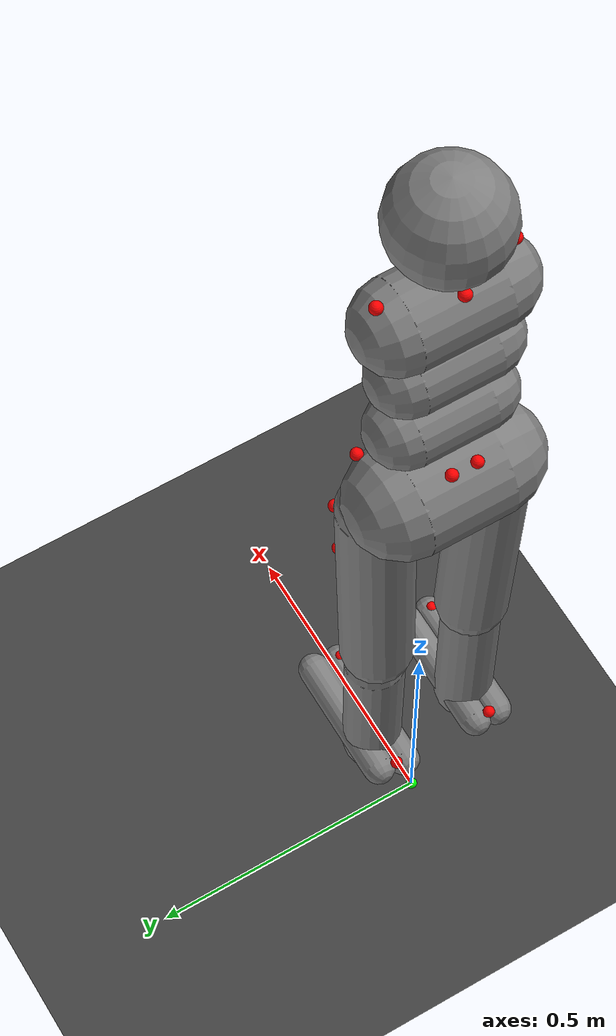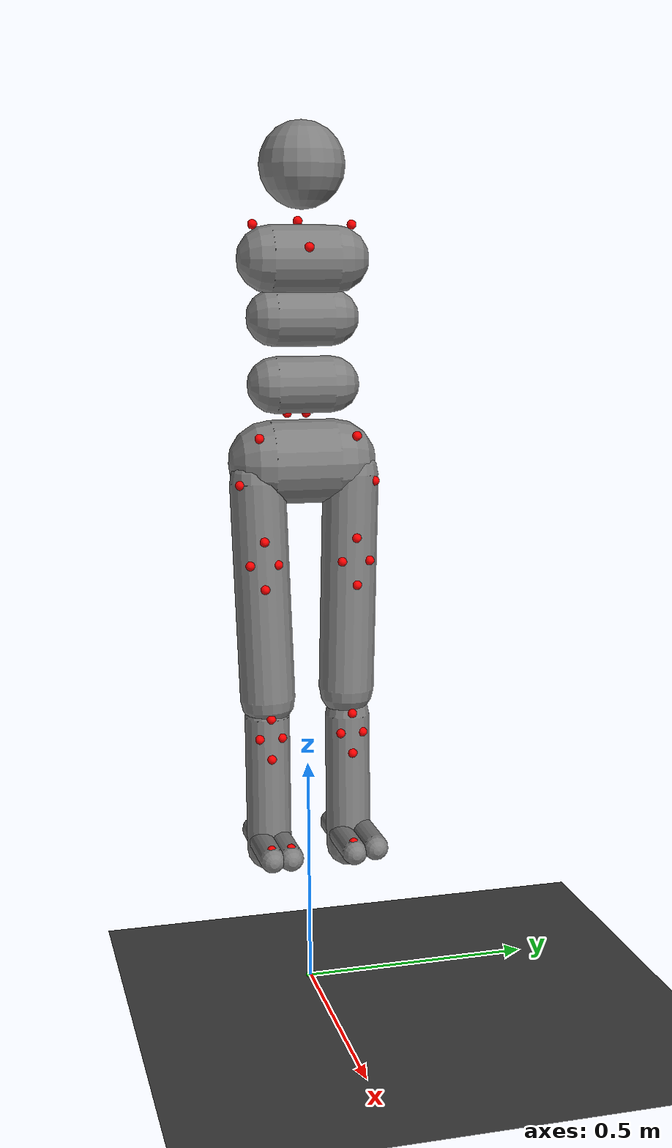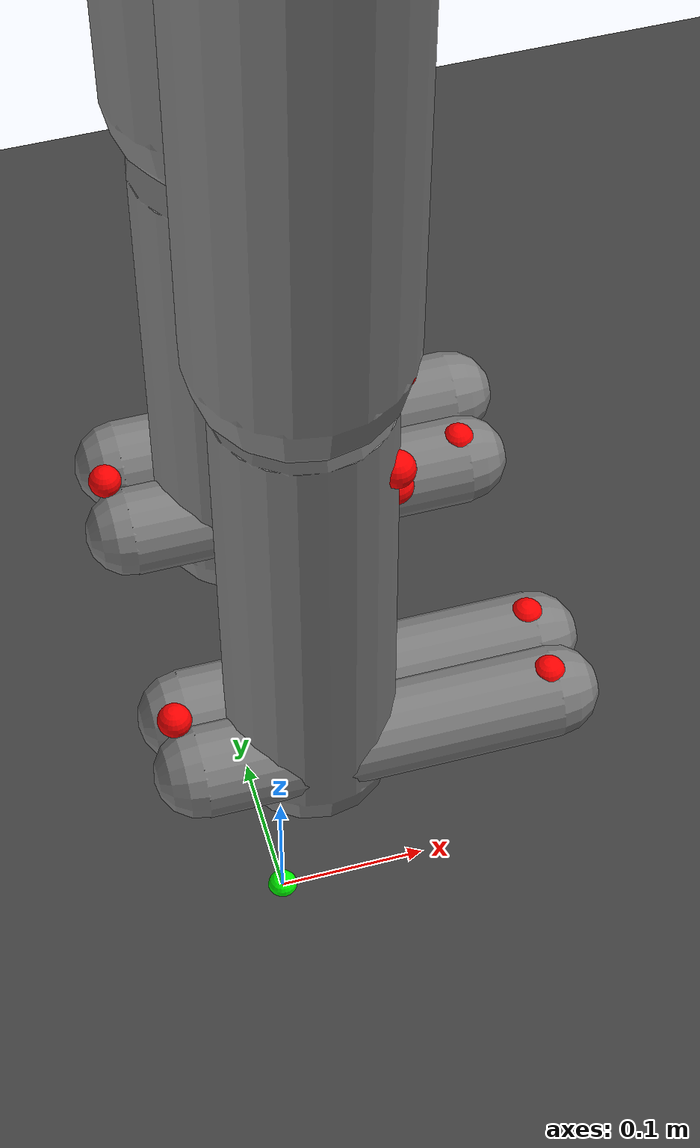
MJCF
<mujoco model="humanoid">
  <default>
    <default class="/"/>
    <default class="left_leg/"/>
    <default class="right_leg/"/>
  </default>
  <asset>
    <texture name="texplane" type="2d" builtin="checker" rgb1="0.20000000000000001 0.20000000000000001 0.20000000000000001" rgb2="0.29999999999999999 0.29999999999999999 0.29999999999999999" width="512" height="512"/>
    <material name="grid" class="/" texture="texplane" texrepeat="1 1" texuniform="true" reflectance="0.0"/>
  </asset>
  <worldbody>
    <geom name="floor" class="/" type="plane" conaffinity="1" size="100 100 0.20000000000000001" material="grid" pos="0 0 0"/>
    <body name="torso" pos="0.0000 0.0000 1.5920">
      <light name="top" class="/" mode="trackcom" pos="0 0 2"/>
      <camera name="back" class="/" mode="trackcom" pos="-3 0 1" xyaxes="0 -1 0 1 0 2"/>
      <camera name="side" class="/" mode="trackcom" pos="0 -3 1" xyaxes="1 0 0 0 1 2"/>
      <freejoint name="root"/>
      <geom name="torso" class="/" type="capsule" size="0.0700" fromto="0.0000 -0.0700 0.0000 0.0000 0.0700 0.0000"/>
      <site name="C7" class="/" type="sphere" rgba="1 0 0 1" size="0.0100" pos="-0.0450 0.0000 0.0779"/>
      <site name="CLAV" class="/" type="sphere" rgba="1 0 0 1" size="0.0100" pos="0.0658 0.0000 0.0239"/>
      <site name="LSHO" class="/" type="sphere" rgba="1 0 0 1" size="0.0100" pos="0.0000 0.1050 0.0700"/>
      <site name="RSHO" class="/" type="sphere" rgba="1 0 0 1" size="0.0100" pos="0.0000 -0.1050 0.0700"/>
      <geom name="upper_waist" class="/" type="capsule" size="0.0600" fromto="-0.0100 -0.0600 -0.1200 -0.0100 0.0600 -0.1200"/>
      <body name="head" pos="0.0000 0.0000 0.1900">
        <geom name="head" class="/" type="sphere" size="0.0900" pos="0.0000 0.0000 0.0000"/>
      </body>
      <camera name="egocentric" class="/" fovy="80.0" pos="0.089999999999999997 0 0" xyaxes="0 -1 0 0.10000000000000001 1 2"/>
      <body name="lower_waist" pos="-0.0100 0.0000 -0.2600" quat="1 0 -0.002 0">
        <geom name="lower_waist" class="/" type="capsule" size="0.0600" fromto="0.0000 -0.0600 0.0000 0.0000 0.0600 0.0000"/>
        <joint name="abdomen_z" class="/" type="hinge" pos="0 0 0.065000000000000002" axis="0 0 1" limited="true" solimplimit="0 0.98999999999999999 0.01" stiffness="20.0" range="-45 45" armature="0.01" damping="5.0"/>
        <joint name="abdomen_y" class="/" type="hinge" pos="0 0 0.065000000000000002" axis="0 1 0" limited="true" solimplimit="0 0.98999999999999999 0.01" stiffness="10.0" range="-75 30" armature="0.01" damping="5.0"/>
        <body name="pelvis" pos="0.0000 0.0000 -0.1650" quat="1 0 -0.002 0">
          <joint name="abdomen_x" class="/" type="hinge" pos="0 0 0.10000000000000001" axis="1 0 0" limited="true" solimplimit="0 0.98999999999999999 0.01" stiffness="10.0" range="-35 35" armature="0.01" damping="5.0"/>
          <geom name="butt" class="/" type="capsule" size="0.0900" fromto="-0.0200 -0.0700 0.0000 -0.0200 0.0700 0.0000"/>
          <site name="LASI" class="/" type="sphere" rgba="1 0 0 1" size="0.0100" pos="0.0489 0.1050 0.0579"/>
          <site name="LPSI" class="/" type="sphere" rgba="1 0 0 1" size="0.0100" pos="-0.0665 0.0210 0.0997"/>
          <site name="RASI" class="/" type="sphere" rgba="1 0 0 1" size="0.0100" pos="0.0489 -0.1050 0.0579"/>
          <site name="RPSI" class="/" type="sphere" rgba="1 0 0 1" size="0.0100" pos="-0.0665 -0.0210 0.0997"/>
          <site name="left_leg_site" class="/" size="9.9999999999999995e-07 9.9999999999999995e-07 9.9999999999999995e-07" pos="0 0.10000000000000001 -0.040000000000000001"/>
          <body pos="0.0000 0.1000 -0.0400" name="left_leg/">
            <body name="left_leg/thigh" pos="0.0000 0.0000 0.0000">
              <joint name="left_leg/hip_x" class="left_leg/" type="hinge" axis="1 0 0" limited="true" solimplimit="0 0.98999999999999999 0.01" stiffness="10.0" range="-25 5" armature="0.01" damping="5.0"/>
              <joint name="left_leg/hip_z" class="left_leg/" type="hinge" axis="0 0 1" limited="true" solimplimit="0 0.98999999999999999 0.01" stiffness="10.0" range="-60 35" armature="0.01" damping="5.0"/>
              <joint name="left_leg/hip_y" class="left_leg/" type="hinge" axis="0 1 0" limited="true" solimplimit="0 0.98999999999999999 0.01" stiffness="20.0" range="-110 20" armature="0.01" damping="5.0"/>
              <geom name="left_leg/thigh" class="left_leg/" type="capsule" size="0.0600" fromto="0.0000 0.0020 0.0135 0.0000 -0.0120 -0.4615"/>
              <site name="left_leg/LGT" class="left_leg/" type="sphere" rgba="1 0 0 1" size="0.0100" pos="0.0386 0.0460 0.0000"/>
              <site name="left_leg/LT1" class="left_leg/" type="sphere" rgba="1 0 0 1" size="0.0100" pos="0.0600 0.0000 -0.1190"/>
              <site name="left_leg/LT2" class="left_leg/" type="sphere" rgba="1 0 0 1" size="0.0100" pos="0.0520 0.0300 -0.1700"/>
              <site name="left_leg/LT3" class="left_leg/" type="sphere" rgba="1 0 0 1" size="0.0100" pos="0.0600 0.0000 -0.2210"/>
              <site name="left_leg/LT4" class="left_leg/" type="sphere" rgba="1 0 0 1" size="0.0100" pos="0.0520 -0.0300 -0.1700"/>
              <body name="left_leg/shin" pos="0.0000 -0.0100 -0.4030">
                <joint name="left_leg/knee" class="left_leg/" type="hinge" pos="0 0 0.02" axis="0 -1 0" limited="true" solimplimit="0 0.98999999999999999 0.01" stiffness="1.0" range="-160 2" armature="0.01" damping="0.2"/>
                <geom name="left_leg/shin" class="left_leg/" type="capsule" size="0.0490" fromto="0.0000 0.0000 -0.1180 0.0000 0.0000 -0.4180"/>
                <site name="left_leg/LKNL" class="left_leg/" type="sphere" rgba="1 0 0 1" size="0.0100" pos="0.0000 0.0490 0.0000"/>
                <site name="left_leg/LKNM" class="left_leg/" type="sphere" rgba="1 0 0 1" size="0.0100" pos="-0.0000 -0.0490 0.0000"/>
                <site name="left_leg/LS1" class="left_leg/" type="sphere" rgba="1 0 0 1" size="0.0100" pos="0.0490 0.0000 -0.1050"/>
                <site name="left_leg/LS2" class="left_leg/" type="sphere" rgba="1 0 0 1" size="0.0100" pos="0.0424 0.0245 -0.1500"/>
                <site name="left_leg/LS3" class="left_leg/" type="sphere" rgba="1 0 0 1" size="0.0100" pos="0.0490 0.0000 -0.1950"/>
                <site name="left_leg/LS4" class="left_leg/" type="sphere" rgba="1 0 0 1" size="0.0100" pos="0.0424 -0.0245 -0.1500"/>
                <body name="left_leg/foot" pos="0.0000 0.0000 -0.3900">
                  <joint name="left_leg/ankle_y" class="left_leg/" type="hinge" pos="0 0 0.080000000000000002" axis="0 1 0" limited="true" solimplimit="0 0.98999999999999999 0.01" stiffness="6.0" range="-50 50" armature="0.01" damping="0.2"/>
                  <joint name="left_leg/ankle_x" class="left_leg/" type="hinge" pos="0 0 0.040000000000000001" axis="1 0 0.5" limited="true" solimplimit="0 0.98999999999999999 0.01" stiffness="3.0" range="-50 50" armature="0.01" damping="0.2"/>
                  <geom name="left_leg/right_foot" class="left_leg/" type="capsule" size="0.0270" fromto="-0.0660 0.0260 0.0080 0.1440 0.0260 0.0080"/>
                  <geom name="left_leg/left_foot" class="left_leg/" type="capsule" size="0.0270" fromto="-0.0700 -0.0200 0.0000 0.1400 -0.0200 0.0000"/>
                  <site name="left_leg/LANL" class="left_leg/" type="sphere" rgba="1 0 0 1" size="0.0100" pos="0.0000 0.0354 0.0421"/>
                  <site name="left_leg/LANM" class="left_leg/" type="sphere" rgba="1 0 0 1" size="0.0100" pos="0.0000 -0.0354 0.0421"/>
                  <site name="left_leg/LHEE" class="left_leg/" type="sphere" rgba="1 0 0 1" size="0.0100" pos="-0.0788 0.0000 0.0270"/>
                  <site name="left_leg/LM1" class="left_leg/" type="sphere" rgba="1 0 0 1" size="0.0100" pos="0.1365 -0.0212 0.0212"/>
                  <site name="left_leg/LM5" class="left_leg/" type="sphere" rgba="1 0 0 1" size="0.0100" pos="0.1365 0.0212 0.0212"/>
                  <body name="left_leg/ffp00" pos="-0.0700 -0.0470 -0.0270"/>
                  <body name="left_leg/ffp01" pos="-0.0700 -0.0254 -0.0270"/>
                  <body name="left_leg/ffp02" pos="-0.0700 -0.0038 -0.0270"/>
                  <body name="left_leg/ffp03" pos="-0.0700 0.0178 -0.0270"/>
                  <body name="left_leg/ffp04" pos="-0.0700 0.0394 -0.0270"/>
                  <body name="left_leg/ffp10" pos="-0.0490 -0.0470 -0.0270"/>
                  <body name="left_leg/ffp11" pos="-0.0490 -0.0254 -0.0270"/>
                  <body name="left_leg/ffp12" pos="-0.0490 -0.0038 -0.0270"/>
                  <body name="left_leg/ffp13" pos="-0.0490 0.0178 -0.0270"/>
                  <body name="left_leg/ffp14" pos="-0.0490 0.0394 -0.0270"/>
                  <body name="left_leg/ffp20" pos="-0.0280 -0.0470 -0.0270"/>
                  <body name="left_leg/ffp21" pos="-0.0280 -0.0254 -0.0270"/>
                  <body name="left_leg/ffp22" pos="-0.0280 -0.0038 -0.0270"/>
                  <body name="left_leg/ffp23" pos="-0.0280 0.0178 -0.0270"/>
                  <body name="left_leg/ffp24" pos="-0.0280 0.0394 -0.0270"/>
                  <body name="left_leg/ffp30" pos="-0.0070 -0.0470 -0.0270"/>
                  <body name="left_leg/ffp31" pos="-0.0070 -0.0254 -0.0270"/>
                  <body name="left_leg/ffp32" pos="-0.0070 -0.0038 -0.0270"/>
                  <body name="left_leg/ffp33" pos="-0.0070 0.0178 -0.0270"/>
                  <body name="left_leg/ffp34" pos="-0.0070 0.0394 -0.0270"/>
                  <body name="left_leg/ffp40" pos="0.0140 -0.0470 -0.0270"/>
                  <body name="left_leg/ffp41" pos="0.0140 -0.0254 -0.0270"/>
                  <body name="left_leg/ffp42" pos="0.0140 -0.0038 -0.0270"/>
                  <body name="left_leg/ffp43" pos="0.0140 0.0178 -0.0270"/>
                  <body name="left_leg/ffp44" pos="0.0140 0.0394 -0.0270"/>
                  <body name="left_leg/ffp50" pos="0.0350 -0.0470 -0.0270"/>
                  <body name="left_leg/ffp51" pos="0.0350 -0.0254 -0.0270"/>
                  <body name="left_leg/ffp52" pos="0.0350 -0.0038 -0.0270"/>
                  <body name="left_leg/ffp53" pos="0.0350 0.0178 -0.0270"/>
                  <body name="left_leg/ffp54" pos="0.0350 0.0394 -0.0270"/>
                  <body name="left_leg/ffp60" pos="0.0560 -0.0470 -0.0270"/>
                  <body name="left_leg/ffp61" pos="0.0560 -0.0254 -0.0270"/>
                  <body name="left_leg/ffp62" pos="0.0560 -0.0038 -0.0270"/>
                  <body name="left_leg/ffp63" pos="0.0560 0.0178 -0.0270"/>
                  <body name="left_leg/ffp64" pos="0.0560 0.0394 -0.0270"/>
                  <body name="left_leg/ffp70" pos="0.0770 -0.0470 -0.0270"/>
                  <body name="left_leg/ffp71" pos="0.0770 -0.0254 -0.0270"/>
                  <body name="left_leg/ffp72" pos="0.0770 -0.0038 -0.0270"/>
                  <body name="left_leg/ffp73" pos="0.0770 0.0178 -0.0270"/>
                  <body name="left_leg/ffp74" pos="0.0770 0.0394 -0.0270"/>
                  <body name="left_leg/ffp80" pos="0.0980 -0.0470 -0.0270"/>
                  <body name="left_leg/ffp81" pos="0.0980 -0.0254 -0.0270"/>
                  <body name="left_leg/ffp82" pos="0.0980 -0.0038 -0.0270"/>
                  <body name="left_leg/ffp83" pos="0.0980 0.0178 -0.0270"/>
                  <body name="left_leg/ffp84" pos="0.0980 0.0394 -0.0270"/>
                  <body name="left_leg/ffp90" pos="0.1190 -0.0470 -0.0270"/>
                  <body name="left_leg/ffp91" pos="0.1190 -0.0254 -0.0270"/>
                  <body name="left_leg/ffp92" pos="0.1190 -0.0038 -0.0270"/>
                  <body name="left_leg/ffp93" pos="0.1190 0.0178 -0.0270"/>
                  <body name="left_leg/ffp94" pos="0.1190 0.0394 -0.0270"/>
                </body>
              </body>
            </body>
          </body>
          <site name="right_leg_site" class="/" size="9.9999999999999995e-07 9.9999999999999995e-07 9.9999999999999995e-07" pos="0 -0.10000000000000001 -0.040000000000000001"/>
          <body pos="0.0000 -0.1000 -0.0400" name="right_leg/">
            <body name="right_leg/thigh" pos="0.0000 0.0000 0.0000">
              <joint name="right_leg/hip_x" class="right_leg/" type="hinge" axis="1 0 0" limited="true" solimplimit="0 0.98999999999999999 0.01" stiffness="10.0" range="-25 5" armature="0.01" damping="5.0"/>
              <joint name="right_leg/hip_z" class="right_leg/" type="hinge" axis="0 0 1" limited="true" solimplimit="0 0.98999999999999999 0.01" stiffness="10.0" range="-60 35" armature="0.01" damping="5.0"/>
              <joint name="right_leg/hip_y" class="right_leg/" type="hinge" axis="0 1 0" limited="true" solimplimit="0 0.98999999999999999 0.01" stiffness="20.0" range="-110 20" armature="0.01" damping="5.0"/>
              <geom name="right_leg/thigh" class="right_leg/" type="capsule" size="0.0600" fromto="0.0000 -0.0020 0.0015 0.0000 0.0120 -0.4735"/>
              <site name="right_leg/RGT" class="right_leg/" type="sphere" rgba="1 0 0 1" size="0.0100" pos="0.0386 -0.0460 0.0000"/>
              <site name="right_leg/RT1" class="right_leg/" type="sphere" rgba="1 0 0 1" size="0.0100" pos="0.0600 0.0000 -0.1190"/>
              <site name="right_leg/RT2" class="right_leg/" type="sphere" rgba="1 0 0 1" size="0.0100" pos="0.0520 0.0300 -0.1700"/>
              <site name="right_leg/RT3" class="right_leg/" type="sphere" rgba="1 0 0 1" size="0.0100" pos="0.0600 0.0000 -0.2210"/>
              <site name="right_leg/RT4" class="right_leg/" type="sphere" rgba="1 0 0 1" size="0.0100" pos="0.0520 -0.0300 -0.1700"/>
              <body name="right_leg/shin" pos="0.0000 0.0100 -0.4030">
                <joint name="right_leg/knee" class="right_leg/" type="hinge" pos="0 0 0.02" axis="0 -1 0" limited="true" solimplimit="0 0.98999999999999999 0.01" stiffness="1.0" range="-160 2" armature="0.01" damping="0.2"/>
                <geom name="right_leg/shin" class="right_leg/" type="capsule" size="0.0490" fromto="0.0000 0.0000 -0.1100 0.0000 0.0000 -0.4100"/>
                <site name="right_leg/RKNL" class="right_leg/" type="sphere" rgba="1 0 0 1" size="0.0100" pos="-0.0000 -0.0490 0.0000"/>
                <site name="right_leg/RKNM" class="right_leg/" type="sphere" rgba="1 0 0 1" size="0.0100" pos="0.0000 0.0490 0.0000"/>
                <site name="right_leg/RS1" class="right_leg/" type="sphere" rgba="1 0 0 1" size="0.0100" pos="0.0490 0.0000 -0.1050"/>
                <site name="right_leg/RS2" class="right_leg/" type="sphere" rgba="1 0 0 1" size="0.0100" pos="0.0424 0.0245 -0.1500"/>
                <site name="right_leg/RS3" class="right_leg/" type="sphere" rgba="1 0 0 1" size="0.0100" pos="0.0490 0.0000 -0.1950"/>
                <site name="right_leg/RS4" class="right_leg/" type="sphere" rgba="1 0 0 1" size="0.0100" pos="0.0424 -0.0245 -0.1500"/>
                <body name="right_leg/foot" pos="0.0000 0.0000 -0.3900">
                  <joint name="right_leg/ankle_y" class="right_leg/" type="hinge" pos="0 0 0.080000000000000002" axis="0 1 0" limited="true" solimplimit="0 0.98999999999999999 0.01" stiffness="6.0" range="-50 50" armature="0.01" damping="0.2"/>
                  <joint name="right_leg/ankle_x" class="right_leg/" type="hinge" pos="0 0 0.040000000000000001" axis="1 0 0.5" limited="true" solimplimit="0 0.98999999999999999 0.01" stiffness="3.0" range="-50 50" armature="0.01" damping="0.2"/>
                  <geom name="right_leg/right_foot" class="right_leg/" type="capsule" size="0.0270" fromto="-0.0700 -0.0200 0.0000 0.1400 -0.0200 0.0000"/>
                  <geom name="right_leg/left_foot" class="right_leg/" type="capsule" size="0.0270" fromto="-0.0700 0.0200 0.0000 0.1400 0.0200 0.0000"/>
                  <site name="right_leg/RANL" class="right_leg/" type="sphere" rgba="1 0 0 1" size="0.0100" pos="0.0000 -0.0354 0.0421"/>
                  <site name="right_leg/RANM" class="right_leg/" type="sphere" rgba="1 0 0 1" size="0.0100" pos="0.0000 0.0354 0.0421"/>
                  <site name="right_leg/RHEE" class="right_leg/" type="sphere" rgba="1 0 0 1" size="0.0100" pos="-0.0788 0.0000 0.0270"/>
                  <site name="right_leg/RM1" class="right_leg/" type="sphere" rgba="1 0 0 1" size="0.0100" pos="0.1365 0.0212 0.0212"/>
                  <site name="right_leg/RM5" class="right_leg/" type="sphere" rgba="1 0 0 1" size="0.0100" pos="0.1365 -0.0212 0.0212"/>
                  <body name="right_leg/ffp00" pos="-0.0700 -0.0470 -0.0270"/>
                  <body name="right_leg/ffp01" pos="-0.0700 -0.0254 -0.0270"/>
                  <body name="right_leg/ffp02" pos="-0.0700 -0.0038 -0.0270"/>
                  <body name="right_leg/ffp03" pos="-0.0700 0.0178 -0.0270"/>
                  <body name="right_leg/ffp04" pos="-0.0700 0.0394 -0.0270"/>
                  <body name="right_leg/ffp10" pos="-0.0490 -0.0470 -0.0270"/>
                  <body name="right_leg/ffp11" pos="-0.0490 -0.0254 -0.0270"/>
                  <body name="right_leg/ffp12" pos="-0.0490 -0.0038 -0.0270"/>
                  <body name="right_leg/ffp13" pos="-0.0490 0.0178 -0.0270"/>
                  <body name="right_leg/ffp14" pos="-0.0490 0.0394 -0.0270"/>
                  <body name="right_leg/ffp20" pos="-0.0280 -0.0470 -0.0270"/>
                  <body name="right_leg/ffp21" pos="-0.0280 -0.0254 -0.0270"/>
                  <body name="right_leg/ffp22" pos="-0.0280 -0.0038 -0.0270"/>
                  <body name="right_leg/ffp23" pos="-0.0280 0.0178 -0.0270"/>
                  <body name="right_leg/ffp24" pos="-0.0280 0.0394 -0.0270"/>
                  <body name="right_leg/ffp30" pos="-0.0070 -0.0470 -0.0270"/>
                  <body name="right_leg/ffp31" pos="-0.0070 -0.0254 -0.0270"/>
                  <body name="right_leg/ffp32" pos="-0.0070 -0.0038 -0.0270"/>
                  <body name="right_leg/ffp33" pos="-0.0070 0.0178 -0.0270"/>
                  <body name="right_leg/ffp34" pos="-0.0070 0.0394 -0.0270"/>
                  <body name="right_leg/ffp40" pos="0.0140 -0.0470 -0.0270"/>
                  <body name="right_leg/ffp41" pos="0.0140 -0.0254 -0.0270"/>
                  <body name="right_leg/ffp42" pos="0.0140 -0.0038 -0.0270"/>
                  <body name="right_leg/ffp43" pos="0.0140 0.0178 -0.0270"/>
                  <body name="right_leg/ffp44" pos="0.0140 0.0394 -0.0270"/>
                  <body name="right_leg/ffp50" pos="0.0350 -0.0470 -0.0270"/>
                  <body name="right_leg/ffp51" pos="0.0350 -0.0254 -0.0270"/>
                  <body name="right_leg/ffp52" pos="0.0350 -0.0038 -0.0270"/>
                  <body name="right_leg/ffp53" pos="0.0350 0.0178 -0.0270"/>
                  <body name="right_leg/ffp54" pos="0.0350 0.0394 -0.0270"/>
                  <body name="right_leg/ffp60" pos="0.0560 -0.0470 -0.0270"/>
                  <body name="right_leg/ffp61" pos="0.0560 -0.0254 -0.0270"/>
                  <body name="right_leg/ffp62" pos="0.0560 -0.0038 -0.0270"/>
                  <body name="right_leg/ffp63" pos="0.0560 0.0178 -0.0270"/>
                  <body name="right_leg/ffp64" pos="0.0560 0.0394 -0.0270"/>
                  <body name="right_leg/ffp70" pos="0.0770 -0.0470 -0.0270"/>
                  <body name="right_leg/ffp71" pos="0.0770 -0.0254 -0.0270"/>
                  <body name="right_leg/ffp72" pos="0.0770 -0.0038 -0.0270"/>
                  <body name="right_leg/ffp73" pos="0.0770 0.0178 -0.0270"/>
                  <body name="right_leg/ffp74" pos="0.0770 0.0394 -0.0270"/>
                  <body name="right_leg/ffp80" pos="0.0980 -0.0470 -0.0270"/>
                  <body name="right_leg/ffp81" pos="0.0980 -0.0254 -0.0270"/>
                  <body name="right_leg/ffp82" pos="0.0980 -0.0038 -0.0270"/>
                  <body name="right_leg/ffp83" pos="0.0980 0.0178 -0.0270"/>
                  <body name="right_leg/ffp84" pos="0.0980 0.0394 -0.0270"/>
                  <body name="right_leg/ffp90" pos="0.1190 -0.0470 -0.0270"/>
                  <body name="right_leg/ffp91" pos="0.1190 -0.0254 -0.0270"/>
                  <body name="right_leg/ffp92" pos="0.1190 -0.0038 -0.0270"/>
                  <body name="right_leg/ffp93" pos="0.1190 0.0178 -0.0270"/>
                  <body name="right_leg/ffp94" pos="0.1190 0.0394 -0.0270"/>
                </body>
              </body>
            </body>
          </body>
        </body>
      </body>
    </body>
    <body name="m0" mocap="true" pos="0 0 0">
      <geom name="m0" class="/" type="sphere" size="0.01" rgba="0 1 0 1"/>
    </body>
    <body name="m1" mocap="true" pos="0 0 0">
      <geom name="m1" class="/" type="sphere" size="0.01" rgba="0 1 0 1"/>
    </body>
    <body name="m2" mocap="true" pos="0 0 0">
      <geom name="m2" class="/" type="sphere" size="0.01" rgba="0 1 0 1"/>
    </body>
    <body name="m3" mocap="true" pos="0 0 0">
      <geom name="m3" class="/" type="sphere" size="0.01" rgba="0 1 0 1"/>
    </body>
    <body name="m4" mocap="true" pos="0 0 0">
      <geom name="m4" class="/" type="sphere" size="0.01" rgba="0 1 0 1"/>
    </body>
    <body name="m5" mocap="true" pos="0 0 0">
      <geom name="m5" class="/" type="sphere" size="0.01" rgba="0 1 0 1"/>
    </body>
    <body name="m6" mocap="true" pos="0 0 0">
      <geom name="m6" class="/" type="sphere" size="0.01" rgba="0 1 0 1"/>
    </body>
    <body name="m7" mocap="true" pos="0 0 0">
      <geom name="m7" class="/" type="sphere" size="0.01" rgba="0 1 0 1"/>
    </body>
    <body name="m8" mocap="true" pos="0 0 0">
      <geom name="m8" class="/" type="sphere" size="0.01" rgba="0 1 0 1"/>
    </body>
    <body name="m9" mocap="true" pos="0 0 0">
      <geom name="m9" class="/" type="sphere" size="0.01" rgba="0 1 0 1"/>
    </body>
    <body name="m10" mocap="true" pos="0 0 0">
      <geom name="m10" class="/" type="sphere" size="0.01" rgba="0 1 0 1"/>
    </body>
    <body name="m11" mocap="true" pos="0 0 0">
      <geom name="m11" class="/" type="sphere" size="0.01" rgba="0 1 0 1"/>
    </body>
    <body name="m12" mocap="true" pos="0 0 0">
      <geom name="m12" class="/" type="sphere" size="0.01" rgba="0 1 0 1"/>
    </body>
    <body name="m13" mocap="true" pos="0 0 0">
      <geom name="m13" class="/" type="sphere" size="0.01" rgba="0 1 0 1"/>
    </body>
    <body name="m14" mocap="true" pos="0 0 0">
      <geom name="m14" class="/" type="sphere" size="0.01" rgba="0 1 0 1"/>
    </body>
    <body name="m15" mocap="true" pos="0 0 0">
      <geom name="m15" class="/" type="sphere" size="0.01" rgba="0 1 0 1"/>
    </body>
    <body name="m16" mocap="true" pos="0 0 0">
      <geom name="m16" class="/" type="sphere" size="0.01" rgba="0 1 0 1"/>
    </body>
    <body name="m17" mocap="true" pos="0 0 0">
      <geom name="m17" class="/" type="sphere" size="0.01" rgba="0 1 0 1"/>
    </body>
    <body name="m18" mocap="true" pos="0 0 0">
      <geom name="m18" class="/" type="sphere" size="0.01" rgba="0 1 0 1"/>
    </body>
    <body name="m19" mocap="true" pos="0 0 0">
      <geom name="m19" class="/" type="sphere" size="0.01" rgba="0 1 0 1"/>
    </body>
    <body name="m20" mocap="true" pos="0 0 0">
      <geom name="m20" class="/" type="sphere" size="0.01" rgba="0 1 0 1"/>
    </body>
    <body name="m21" mocap="true" pos="0 0 0">
      <geom name="m21" class="/" type="sphere" size="0.01" rgba="0 1 0 1"/>
    </body>
    <body name="m22" mocap="true" pos="0 0 0">
      <geom name="m22" class="/" type="sphere" size="0.01" rgba="0 1 0 1"/>
    </body>
    <body name="m23" mocap="true" pos="0 0 0">
      <geom name="m23" class="/" type="sphere" size="0.01" rgba="0 1 0 1"/>
    </body>
    <body name="m24" mocap="true" pos="0 0 0">
      <geom name="m24" class="/" type="sphere" size="0.01" rgba="0 1 0 1"/>
    </body>
    <body name="m25" mocap="true" pos="0 0 0">
      <geom name="m25" class="/" type="sphere" size="0.01" rgba="0 1 0 1"/>
    </body>
    <body name="m26" mocap="true" pos="0 0 0">
      <geom name="m26" class="/" type="sphere" size="0.01" rgba="0 1 0 1"/>
    </body>
    <body name="m27" mocap="true" pos="0 0 0">
      <geom name="m27" class="/" type="sphere" size="0.01" rgba="0 1 0 1"/>
    </body>
    <body name="m28" mocap="true" pos="0 0 0">
      <geom name="m28" class="/" type="sphere" size="0.01" rgba="0 1 0 1"/>
    </body>
    <body name="m29" mocap="true" pos="0 0 0">
      <geom name="m29" class="/" type="sphere" size="0.01" rgba="0 1 0 1"/>
    </body>
    <body name="m30" mocap="true" pos="0 0 0">
      <geom name="m30" class="/" type="sphere" size="0.01" rgba="0 1 0 1"/>
    </body>
    <body name="m31" mocap="true" pos="0 0 0">
      <geom name="m31" class="/" type="sphere" size="0.01" rgba="0 1 0 1"/>
    </body>
    <body name="m32" mocap="true" pos="0 0 0">
      <geom name="m32" class="/" type="sphere" size="0.01" rgba="0 1 0 1"/>
    </body>
    <body name="m33" mocap="true" pos="0 0 0">
      <geom name="m33" class="/" type="sphere" size="0.01" rgba="0 1 0 1"/>
    </body>
    <body name="m34" mocap="true" pos="0 0 0">
      <geom name="m34" class="/" type="sphere" size="0.01" rgba="0 1 0 1"/>
    </body>
    <body name="m35" mocap="true" pos="0 0 0">
      <geom name="m35" class="/" type="sphere" size="0.01" rgba="0 1 0 1"/>
    </body>
    <body name="m36" mocap="true" pos="0 0 0">
      <geom name="m36" class="/" type="sphere" size="0.01" rgba="0 1 0 1"/>
    </body>
    <body name="m37" mocap="true" pos="0 0 0">
      <geom name="m37" class="/" type="sphere" size="0.01" rgba="0 1 0 1"/>
    </body>
    <body name="m38" mocap="true" pos="0 0 0">
      <geom name="m38" class="/" type="sphere" size="0.01" rgba="0 1 0 1"/>
    </body>
    <body name="m39" mocap="true" pos="0 0 0">
      <geom name="m39" class="/" type="sphere" size="0.01" rgba="0 1 0 1"/>
    </body>
  </worldbody>
  <equality>
    <weld name="world_root" class="/" active="false" body1="torso" relpose="0 0 -2 1 0 0 0"/>
    <joint name="abdomen_y" class="/" active="true" joint1="abdomen_y"/>
    <joint name="abdomen_z" class="/" active="true" joint1="abdomen_z"/>
    <joint name="abdomen_x" class="/" active="true" joint1="abdomen_x"/>
  </equality>
  <actuator>
    <motor name="abdomen_y" class="/" gear="40" joint="abdomen_y"/>
    <motor name="abdomen_z" class="/" gear="40" joint="abdomen_z"/>
    <motor name="abdomen_x" class="/" gear="40" joint="abdomen_x"/>
    <motor name="left_leg/hip_x" class="left_leg/" gear="40" joint="left_leg/hip_x"/>
    <motor name="left_leg/hip_z" class="left_leg/" gear="40" joint="left_leg/hip_z"/>
    <motor name="left_leg/hip_y" class="left_leg/" gear="120" joint="left_leg/hip_y"/>
    <motor name="left_leg/knee" class="left_leg/" gear="80" joint="left_leg/knee"/>
    <motor name="left_leg/ankle_y" class="left_leg/" gear="20" joint="left_leg/ankle_y"/>
    <motor name="left_leg/ankle_x" class="left_leg/" gear="20" joint="left_leg/ankle_x"/>
    <motor name="right_leg/hip_x" class="right_leg/" gear="40" joint="right_leg/hip_x"/>
    <motor name="right_leg/hip_z" class="right_leg/" gear="40" joint="right_leg/hip_z"/>
    <motor name="right_leg/hip_y" class="right_leg/" gear="120" joint="right_leg/hip_y"/>
    <motor name="right_leg/knee" class="right_leg/" gear="80" joint="right_leg/knee"/>
    <motor name="right_leg/ankle_y" class="right_leg/" gear="20" joint="right_leg/ankle_y"/>
    <motor name="right_leg/ankle_x" class="right_leg/" gear="20" joint="right_leg/ankle_x"/>
  </actuator>
</mujoco>
